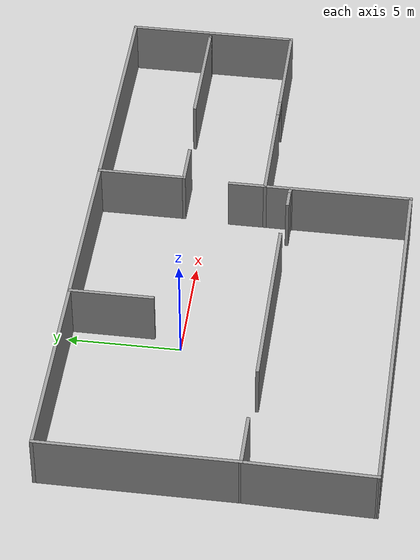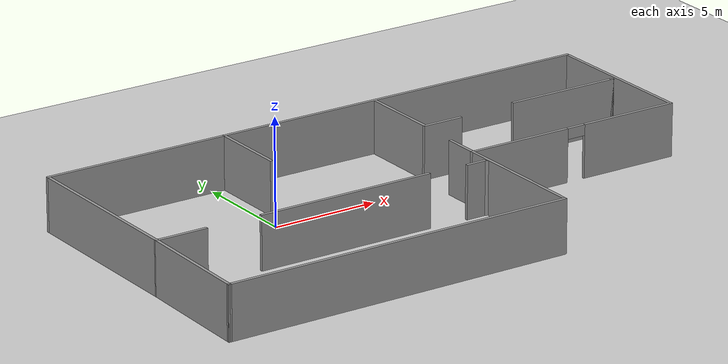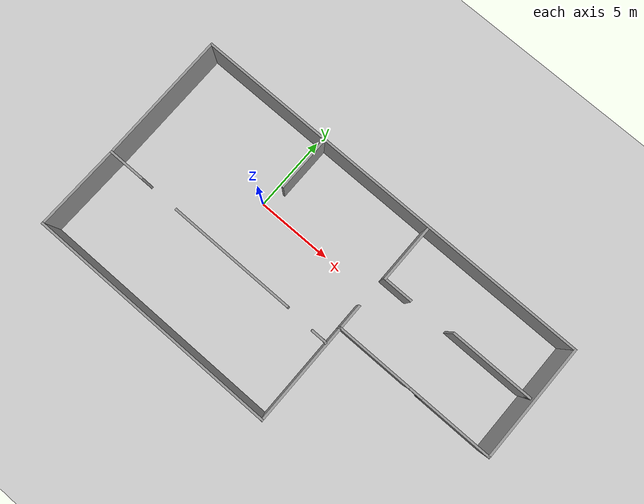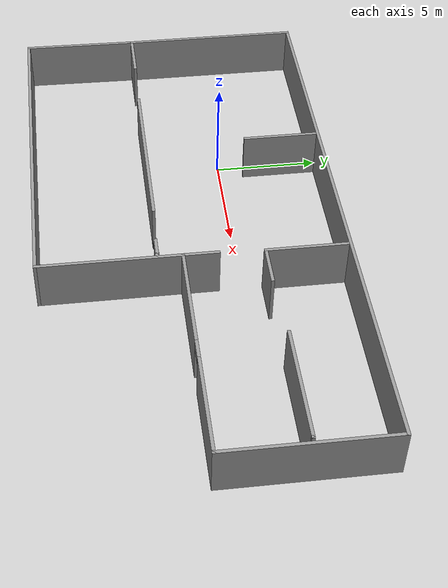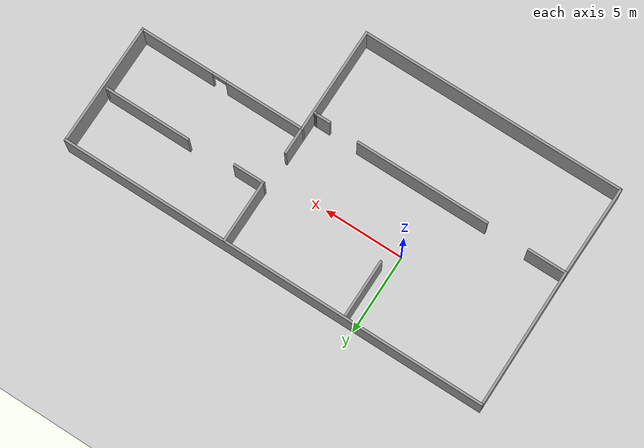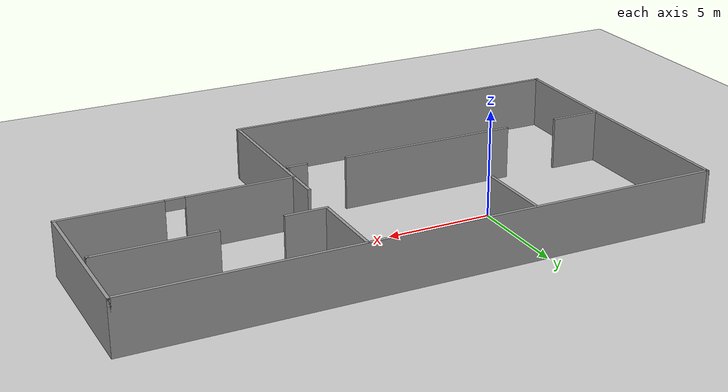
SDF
<sdf version="1.7">
 <world name="default">
  <model name="ground_plane">
   <static>1</static>
   <link name="link">
    <collision name="collision">
     <geometry><plane><normal>0 0 1</normal><size>100 100</size></plane></geometry>
     <surface>
      <contact><collide_bitmask>65535</collide_bitmask></contact>
      <friction><ode><mu>100</mu><mu2>50</mu2></ode></friction>
     </surface>
    </collision>
    <visual name="visual">
     <cast_shadows>0</cast_shadows>
     <geometry><plane><normal>0 0 1</normal><size>100 100</size></plane></geometry>
     <material>
      <script><uri>file://media/materials/scripts/gazebo.material</uri><name>Gazebo/Grey</name></script>
     </material>
    </visual>
   </link>
  </model>
  <model name="test_build">
   <link name="Wall_11">
    <pose>-13.4993 -1.80955 0 0 -0 1.5708</pose>
    <visual name="Wall_11_Visual">
     <pose>0 0 1.25 0 -0 0</pose>
     <geometry><box><size>8.75 0.15 2.5</size></box></geometry>
     <material>
      <script><uri>file://media/materials/scripts/gazebo.material</uri><name>Gazebo/Grey</name></script>
      <ambient>1 1 1 1</ambient>
      <shader type="pixel"/>
     </material>
     <meta><layer>0</layer></meta>
    </visual>
    <collision name="Wall_11_Collision">
     <pose>0 0 1.25 0 -0 0</pose>
     <geometry><box><size>8.75 0.15 2.5</size></box></geometry>
     <surface>
      <friction>
       <ode><mu>1</mu><mu2>1</mu2><fdir1>0 0 0</fdir1><slip1>0</slip1><slip2>0</slip2></ode>
       <torsional>
        <coefficient>1</coefficient>
        <patch_radius>0</patch_radius>
        <surface_radius>0</surface_radius>
        <use_patch_radius>1</use_patch_radius>
        <ode><slip>0</slip></ode>
       </torsional>
      </friction>
      <bounce><restitution_coefficient>0</restitution_coefficient><threshold>1e+06</threshold></bounce>
      <contact>
       <collide_without_contact>0</collide_without_contact>
       <collide_without_contact_bitmask>1</collide_without_contact_bitmask>
       <collide_bitmask>1</collide_bitmask>
       <ode>
        <soft_cfm>0</soft_cfm>
        <soft_erp>0.2</soft_erp>
        <kp>1e+13</kp>
        <kd>1</kd>
        <max_vel>0.01</max_vel>
        <min_depth>0</min_depth>
       </ode>
       <bullet>
        <split_impulse>1</split_impulse>
        <split_impulse_penetration_threshold>-0.01</split_impulse_penetration_threshold>
        <soft_cfm>0</soft_cfm>
        <soft_erp>0.2</soft_erp>
        <kp>1e+13</kp>
        <kd>1</kd>
       </bullet>
      </contact>
     </surface>
    </collision>
   </link>
   <link name="Wall_12">
    <pose>0.050664 2.49045 0 0 -0 0</pose>
    <visual name="Wall_12_Visual">
     <pose>0 0 1.25 0 -0 0</pose>
     <geometry><box><size>27.25 0.15 2.5</size></box></geometry>
     <material>
      <script><uri>file://media/materials/scripts/gazebo.material</uri><name>Gazebo/Grey</name></script>
      <ambient>1 1 1 1</ambient>
      <shader type="pixel"/>
     </material>
     <meta><layer>0</layer></meta>
    </visual>
    <collision name="Wall_12_Collision">
     <pose>0 0 1.25 0 -0 0</pose>
     <geometry><box><size>27.25 0.15 2.5</size></box></geometry>
     <surface>
      <friction>
       <ode><mu>1</mu><mu2>1</mu2><fdir1>0 0 0</fdir1><slip1>0</slip1><slip2>0</slip2></ode>
       <torsional>
        <coefficient>1</coefficient>
        <patch_radius>0</patch_radius>
        <surface_radius>0</surface_radius>
        <use_patch_radius>1</use_patch_radius>
        <ode><slip>0</slip></ode>
       </torsional>
      </friction>
      <bounce><restitution_coefficient>0</restitution_coefficient><threshold>1e+06</threshold></bounce>
      <contact>
       <collide_without_contact>0</collide_without_contact>
       <collide_without_contact_bitmask>1</collide_without_contact_bitmask>
       <collide_bitmask>1</collide_bitmask>
       <ode>
        <soft_cfm>0</soft_cfm>
        <soft_erp>0.2</soft_erp>
        <kp>1e+13</kp>
        <kd>1</kd>
        <max_vel>0.01</max_vel>
        <min_depth>0</min_depth>
       </ode>
       <bullet>
        <split_impulse>1</split_impulse>
        <split_impulse_penetration_threshold>-0.01</split_impulse_penetration_threshold>
        <soft_cfm>0</soft_cfm>
        <soft_erp>0.2</soft_erp>
        <kp>1e+13</kp>
        <kd>1</kd>
       </bullet>
      </contact>
     </surface>
    </collision>
   </link>
   <link name="Wall_13">
    <pose>13.6007 -1.30955 0 0 0 -1.5708</pose>
    <visual name="Wall_13_Visual">
     <pose>0 0 1.25 0 -0 0</pose>
     <geometry><box><size>7.75 0.15 2.5</size></box></geometry>
     <material>
      <script><uri>file://media/materials/scripts/gazebo.material</uri><name>Gazebo/Grey</name></script>
      <ambient>1 1 1 1</ambient>
      <shader type="pixel"/>
     </material>
     <meta><layer>0</layer></meta>
    </visual>
    <collision name="Wall_13_Collision">
     <pose>0 0 1.25 0 -0 0</pose>
     <geometry><box><size>7.75 0.15 2.5</size></box></geometry>
     <surface>
      <friction>
       <ode><mu>1</mu><mu2>1</mu2><fdir1>0 0 0</fdir1><slip1>0</slip1><slip2>0</slip2></ode>
       <torsional>
        <coefficient>1</coefficient>
        <patch_radius>0</patch_radius>
        <surface_radius>0</surface_radius>
        <use_patch_radius>1</use_patch_radius>
        <ode><slip>0</slip></ode>
       </torsional>
      </friction>
      <bounce><restitution_coefficient>0</restitution_coefficient><threshold>1e+06</threshold></bounce>
      <contact>
       <collide_without_contact>0</collide_without_contact>
       <collide_without_contact_bitmask>1</collide_without_contact_bitmask>
       <collide_bitmask>1</collide_bitmask>
       <ode>
        <soft_cfm>0</soft_cfm>
        <soft_erp>0.2</soft_erp>
        <kp>1e+13</kp>
        <kd>1</kd>
        <max_vel>0.01</max_vel>
        <min_depth>0</min_depth>
       </ode>
       <bullet>
        <split_impulse>1</split_impulse>
        <split_impulse_penetration_threshold>-0.01</split_impulse_penetration_threshold>
        <soft_cfm>0</soft_cfm>
        <soft_erp>0.2</soft_erp>
        <kp>1e+13</kp>
        <kd>1</kd>
       </bullet>
      </contact>
     </surface>
    </collision>
   </link>
   <link name="Wall_14">
    <pose>8.30066 -5.10955 0 0 -0 3.14159</pose>
    <visual name="Wall_14_Visual_0">
     <pose>-2.98431 0 1.25 0 -0 0</pose>
     <geometry><box><size>4.78138 0.15 2.5</size></box></geometry>
     <material>
      <script><uri>file://media/materials/scripts/gazebo.material</uri><name>Gazebo/Grey</name></script>
      <ambient>1 1 1 1</ambient>
      <shader type="pixel"/>
     </material>
     <meta><layer>0</layer></meta>
    </visual>
    <visual name="Wall_14_Visual_1">
     <pose>2.84069 0 1.25 0 -0 0</pose>
     <geometry><box><size>5.06862 0.15 2.5</size></box></geometry>
     <material>
      <script><uri>file://media/materials/scripts/gazebo.material</uri><name>Gazebo/Grey</name></script>
      <ambient>1 1 1 1</ambient>
      <shader type="pixel"/>
     </material>
     <meta><layer>0</layer></meta>
    </visual>
    <visual name="Wall_14_Visual_2">
     <pose>-0.143621 0 2.25 0 -0 0</pose>
     <geometry><box><size>0.9 0.15 0.5</size></box></geometry>
     <material>
      <script><uri>file://media/materials/scripts/gazebo.material</uri><name>Gazebo/Grey</name></script>
      <ambient>1 1 1 1</ambient>
      <shader type="pixel"/>
     </material>
     <meta><layer>0</layer></meta>
    </visual>
    <collision name="Wall_14_Collision_0">
     <pose>-2.98431 0 1.25 0 -0 0</pose>
     <geometry><box><size>4.78138 0.15 2.5</size></box></geometry>
     <surface>
      <friction>
       <ode><mu>1</mu><mu2>1</mu2><fdir1>0 0 0</fdir1><slip1>0</slip1><slip2>0</slip2></ode>
       <torsional>
        <coefficient>1</coefficient>
        <patch_radius>0</patch_radius>
        <surface_radius>0</surface_radius>
        <use_patch_radius>1</use_patch_radius>
        <ode><slip>0</slip></ode>
       </torsional>
      </friction>
      <bounce><restitution_coefficient>0</restitution_coefficient><threshold>1e+06</threshold></bounce>
      <contact>
       <collide_without_contact>0</collide_without_contact>
       <collide_without_contact_bitmask>1</collide_without_contact_bitmask>
       <collide_bitmask>1</collide_bitmask>
       <ode>
        <soft_cfm>0</soft_cfm>
        <soft_erp>0.2</soft_erp>
        <kp>1e+13</kp>
        <kd>1</kd>
        <max_vel>0.01</max_vel>
        <min_depth>0</min_depth>
       </ode>
       <bullet>
        <split_impulse>1</split_impulse>
        <split_impulse_penetration_threshold>-0.01</split_impulse_penetration_threshold>
        <soft_cfm>0</soft_cfm>
        <soft_erp>0.2</soft_erp>
        <kp>1e+13</kp>
        <kd>1</kd>
       </bullet>
      </contact>
     </surface>
    </collision>
    <collision name="Wall_14_Collision_1">
     <pose>2.84069 0 1.25 0 -0 0</pose>
     <geometry><box><size>5.06862 0.15 2.5</size></box></geometry>
     <surface>
      <friction>
       <ode><mu>1</mu><mu2>1</mu2><fdir1>0 0 0</fdir1><slip1>0</slip1><slip2>0</slip2></ode>
       <torsional>
        <coefficient>1</coefficient>
        <patch_radius>0</patch_radius>
        <surface_radius>0</surface_radius>
        <use_patch_radius>1</use_patch_radius>
        <ode><slip>0</slip></ode>
       </torsional>
      </friction>
      <bounce><restitution_coefficient>0</restitution_coefficient><threshold>1e+06</threshold></bounce>
      <contact>
       <collide_without_contact>0</collide_without_contact>
       <collide_without_contact_bitmask>1</collide_without_contact_bitmask>
       <collide_bitmask>1</collide_bitmask>
       <ode>
        <soft_cfm>0</soft_cfm>
        <soft_erp>0.2</soft_erp>
        <kp>1e+13</kp>
        <kd>1</kd>
        <max_vel>0.01</max_vel>
        <min_depth>0</min_depth>
       </ode>
       <bullet>
        <split_impulse>1</split_impulse>
        <split_impulse_penetration_threshold>-0.01</split_impulse_penetration_threshold>
        <soft_cfm>0</soft_cfm>
        <soft_erp>0.2</soft_erp>
        <kp>1e+13</kp>
        <kd>1</kd>
       </bullet>
      </contact>
     </surface>
    </collision>
    <collision name="Wall_14_Collision_2">
     <pose>-0.143621 0 2.25 0 -0 0</pose>
     <geometry><box><size>0.9 0.15 0.5</size></box></geometry>
     <surface>
      <friction>
       <ode><mu>1</mu><mu2>1</mu2><fdir1>0 0 0</fdir1><slip1>0</slip1><slip2>0</slip2></ode>
       <torsional>
        <coefficient>1</coefficient>
        <patch_radius>0</patch_radius>
        <surface_radius>0</surface_radius>
        <use_patch_radius>1</use_patch_radius>
        <ode><slip>0</slip></ode>
       </torsional>
      </friction>
      <bounce><restitution_coefficient>0</restitution_coefficient><threshold>1e+06</threshold></bounce>
      <contact>
       <collide_without_contact>0</collide_without_contact>
       <collide_without_contact_bitmask>1</collide_without_contact_bitmask>
       <collide_bitmask>1</collide_bitmask>
       <ode>
        <soft_cfm>0</soft_cfm>
        <soft_erp>0.2</soft_erp>
        <kp>1e+13</kp>
        <kd>1</kd>
        <max_vel>0.01</max_vel>
        <min_depth>0</min_depth>
       </ode>
       <bullet>
        <split_impulse>1</split_impulse>
        <split_impulse_penetration_threshold>-0.01</split_impulse_penetration_threshold>
        <soft_cfm>0</soft_cfm>
        <soft_erp>0.2</soft_erp>
        <kp>1e+13</kp>
        <kd>1</kd>
       </bullet>
      </contact>
     </surface>
    </collision>
   </link>
   <link name="Wall_15">
    <pose>3.00066 -8.40955 0 0 0 -1.5708</pose>
    <visual name="Wall_15_Visual">
     <pose>0 0 1.25 0 -0 0</pose>
     <geometry><box><size>6.75 0.15 2.5</size></box></geometry>
     <material>
      <script><uri>file://media/materials/scripts/gazebo.material</uri><name>Gazebo/Grey</name></script>
      <ambient>1 1 1 1</ambient>
      <shader type="pixel"/>
     </material>
     <meta><layer>0</layer></meta>
    </visual>
    <collision name="Wall_15_Collision">
     <pose>0 0 1.25 0 -0 0</pose>
     <geometry><box><size>6.75 0.15 2.5</size></box></geometry>
     <surface>
      <friction>
       <ode><mu>1</mu><mu2>1</mu2><fdir1>0 0 0</fdir1><slip1>0</slip1><slip2>0</slip2></ode>
       <torsional>
        <coefficient>1</coefficient>
        <patch_radius>0</patch_radius>
        <surface_radius>0</surface_radius>
        <use_patch_radius>1</use_patch_radius>
        <ode><slip>0</slip></ode>
       </torsional>
      </friction>
      <bounce><restitution_coefficient>0</restitution_coefficient><threshold>1e+06</threshold></bounce>
      <contact>
       <collide_without_contact>0</collide_without_contact>
       <collide_without_contact_bitmask>1</collide_without_contact_bitmask>
       <collide_bitmask>1</collide_bitmask>
       <ode>
        <soft_cfm>0</soft_cfm>
        <soft_erp>0.2</soft_erp>
        <kp>1e+13</kp>
        <kd>1</kd>
        <max_vel>0.01</max_vel>
        <min_depth>0</min_depth>
       </ode>
       <bullet>
        <split_impulse>1</split_impulse>
        <split_impulse_penetration_threshold>-0.01</split_impulse_penetration_threshold>
        <soft_cfm>0</soft_cfm>
        <soft_erp>0.2</soft_erp>
        <kp>1e+13</kp>
        <kd>1</kd>
       </bullet>
      </contact>
     </surface>
    </collision>
   </link>
   <link name="Wall_16">
    <pose>-5.29934 -11.7096 0 0 -0 3.14159</pose>
    <visual name="Wall_16_Visual">
     <pose>0 0 1.25 0 -0 0</pose>
     <geometry><box><size>16.75 0.15 2.5</size></box></geometry>
     <material>
      <script><uri>file://media/materials/scripts/gazebo.material</uri><name>Gazebo/Grey</name></script>
      <ambient>1 1 1 1</ambient>
      <shader type="pixel"/>
     </material>
     <meta><layer>0</layer></meta>
    </visual>
    <collision name="Wall_16_Collision">
     <pose>0 0 1.25 0 -0 0</pose>
     <geometry><box><size>16.75 0.15 2.5</size></box></geometry>
     <surface>
      <friction>
       <ode><mu>1</mu><mu2>1</mu2><fdir1>0 0 0</fdir1><slip1>0</slip1><slip2>0</slip2></ode>
       <torsional>
        <coefficient>1</coefficient>
        <patch_radius>0</patch_radius>
        <surface_radius>0</surface_radius>
        <use_patch_radius>1</use_patch_radius>
        <ode><slip>0</slip></ode>
       </torsional>
      </friction>
      <bounce><restitution_coefficient>0</restitution_coefficient><threshold>1e+06</threshold></bounce>
      <contact>
       <collide_without_contact>0</collide_without_contact>
       <collide_without_contact_bitmask>1</collide_without_contact_bitmask>
       <collide_bitmask>1</collide_bitmask>
       <ode>
        <soft_cfm>0</soft_cfm>
        <soft_erp>0.2</soft_erp>
        <kp>1e+13</kp>
        <kd>1</kd>
        <max_vel>0.01</max_vel>
        <min_depth>0</min_depth>
       </ode>
       <bullet>
        <split_impulse>1</split_impulse>
        <split_impulse_penetration_threshold>-0.01</split_impulse_penetration_threshold>
        <soft_cfm>0</soft_cfm>
        <soft_erp>0.2</soft_erp>
        <kp>1e+13</kp>
        <kd>1</kd>
       </bullet>
      </contact>
     </surface>
    </collision>
   </link>
   <link name="Wall_17">
    <pose>-13.5493 -8.90955 0 0 -0 1.55294</pose>
    <visual name="Wall_17_Visual">
     <pose>0 0 1.25 0 -0 0</pose>
     <geometry><box><size>5.75089 0.15 2.5</size></box></geometry>
     <material>
      <script><uri>file://media/materials/scripts/gazebo.material</uri><name>Gazebo/Grey</name></script>
      <ambient>1 1 1 1</ambient>
      <shader type="pixel"/>
     </material>
     <meta><layer>0</layer></meta>
    </visual>
    <collision name="Wall_17_Collision">
     <pose>0 0 1.25 0 -0 0</pose>
     <geometry><box><size>5.75089 0.15 2.5</size></box></geometry>
     <surface>
      <friction>
       <ode><mu>1</mu><mu2>1</mu2><fdir1>0 0 0</fdir1><slip1>0</slip1><slip2>0</slip2></ode>
       <torsional>
        <coefficient>1</coefficient>
        <patch_radius>0</patch_radius>
        <surface_radius>0</surface_radius>
        <use_patch_radius>1</use_patch_radius>
        <ode><slip>0</slip></ode>
       </torsional>
      </friction>
      <bounce><restitution_coefficient>0</restitution_coefficient><threshold>1e+06</threshold></bounce>
      <contact>
       <collide_without_contact>0</collide_without_contact>
       <collide_without_contact_bitmask>1</collide_without_contact_bitmask>
       <collide_bitmask>1</collide_bitmask>
       <ode>
        <soft_cfm>0</soft_cfm>
        <soft_erp>0.2</soft_erp>
        <kp>1e+13</kp>
        <kd>1</kd>
        <max_vel>0.01</max_vel>
        <min_depth>0</min_depth>
       </ode>
       <bullet>
        <split_impulse>1</split_impulse>
        <split_impulse_penetration_threshold>-0.01</split_impulse_penetration_threshold>
        <soft_cfm>0</soft_cfm>
        <soft_erp>0.2</soft_erp>
        <kp>1e+13</kp>
        <kd>1</kd>
       </bullet>
      </contact>
     </surface>
    </collision>
   </link>
   <link name="Wall_18">
    <pose>-12.3243 -6.10955 0 0 -0 0</pose>
    <visual name="Wall_18_Visual">
     <pose>0 0 1.25 0 -0 0</pose>
     <geometry><box><size>2.5 0.15 2.5</size></box></geometry>
     <material>
      <script><uri>file://media/materials/scripts/gazebo.material</uri><name>Gazebo/Grey</name></script>
      <ambient>1 1 1 1</ambient>
      <shader type="pixel"/>
     </material>
     <meta><layer>0</layer></meta>
    </visual>
    <collision name="Wall_18_Collision">
     <pose>0 0 1.25 0 -0 0</pose>
     <geometry><box><size>2.5 0.15 2.5</size></box></geometry>
     <surface>
      <friction>
       <ode><mu>1</mu><mu2>1</mu2><fdir1>0 0 0</fdir1><slip1>0</slip1><slip2>0</slip2></ode>
       <torsional>
        <coefficient>1</coefficient>
        <patch_radius>0</patch_radius>
        <surface_radius>0</surface_radius>
        <use_patch_radius>1</use_patch_radius>
        <ode><slip>0</slip></ode>
       </torsional>
      </friction>
      <bounce><restitution_coefficient>0</restitution_coefficient><threshold>1e+06</threshold></bounce>
      <contact>
       <collide_without_contact>0</collide_without_contact>
       <collide_without_contact_bitmask>1</collide_without_contact_bitmask>
       <collide_bitmask>1</collide_bitmask>
       <ode>
        <soft_cfm>0</soft_cfm>
        <soft_erp>0.2</soft_erp>
        <kp>1e+13</kp>
        <kd>1</kd>
        <max_vel>0.01</max_vel>
        <min_depth>0</min_depth>
       </ode>
       <bullet>
        <split_impulse>1</split_impulse>
        <split_impulse_penetration_threshold>-0.01</split_impulse_penetration_threshold>
        <soft_cfm>0</soft_cfm>
        <soft_erp>0.2</soft_erp>
        <kp>1e+13</kp>
        <kd>1</kd>
       </bullet>
      </contact>
     </surface>
    </collision>
   </link>
   <link name="Wall_20">
    <pose>-4.22443 -6.15634 0 0 -0 0</pose>
    <visual name="Wall_20_Visual">
     <pose>0 0 1.25 0 -0 0</pose>
     <geometry><box><size>8.5 0.15 2.5</size></box></geometry>
     <material>
      <script><uri>file://media/materials/scripts/gazebo.material</uri><name>Gazebo/Grey</name></script>
      <ambient>1 1 1 1</ambient>
      <shader type="pixel"/>
     </material>
     <meta><layer>0</layer></meta>
    </visual>
    <collision name="Wall_20_Collision">
     <pose>0 0 1.25 0 -0 0</pose>
     <geometry><box><size>8.5 0.15 2.5</size></box></geometry>
     <surface>
      <friction>
       <ode><mu>1</mu><mu2>1</mu2><fdir1>0 0 0</fdir1><slip1>0</slip1><slip2>0</slip2></ode>
       <torsional>
        <coefficient>1</coefficient>
        <patch_radius>0</patch_radius>
        <surface_radius>0</surface_radius>
        <use_patch_radius>1</use_patch_radius>
        <ode><slip>0</slip></ode>
       </torsional>
      </friction>
      <bounce><restitution_coefficient>0</restitution_coefficient><threshold>1e+06</threshold></bounce>
      <contact>
       <collide_without_contact>0</collide_without_contact>
       <collide_without_contact_bitmask>1</collide_without_contact_bitmask>
       <collide_bitmask>1</collide_bitmask>
       <ode>
        <soft_cfm>0</soft_cfm>
        <soft_erp>0.2</soft_erp>
        <kp>1e+13</kp>
        <kd>1</kd>
        <max_vel>0.01</max_vel>
        <min_depth>0</min_depth>
       </ode>
       <bullet>
        <split_impulse>1</split_impulse>
        <split_impulse_penetration_threshold>-0.01</split_impulse_penetration_threshold>
        <soft_cfm>0</soft_cfm>
        <soft_erp>0.2</soft_erp>
        <kp>1e+13</kp>
        <kd>1</kd>
       </bullet>
      </contact>
     </surface>
    </collision>
   </link>
   <link name="Wall_22">
    <pose>2.36574 -6.24992 0 0 -0 0</pose>
    <visual name="Wall_22_Visual">
     <pose>0 0 1.25 0 -0 0</pose>
     <geometry><box><size>1 0.15 2.5</size></box></geometry>
     <material>
      <script><uri>file://media/materials/scripts/gazebo.material</uri><name>Gazebo/Grey</name></script>
      <ambient>1 1 1 1</ambient>
      <shader type="pixel"/>
     </material>
     <meta><layer>0</layer></meta>
    </visual>
    <collision name="Wall_22_Collision">
     <pose>0 0 1.25 0 -0 0</pose>
     <geometry><box><size>1 0.15 2.5</size></box></geometry>
     <surface>
      <friction>
       <ode><mu>1</mu><mu2>1</mu2><fdir1>0 0 0</fdir1><slip1>0</slip1><slip2>0</slip2></ode>
       <torsional>
        <coefficient>1</coefficient>
        <patch_radius>0</patch_radius>
        <surface_radius>0</surface_radius>
        <use_patch_radius>1</use_patch_radius>
        <ode><slip>0</slip></ode>
       </torsional>
      </friction>
      <bounce><restitution_coefficient>0</restitution_coefficient><threshold>1e+06</threshold></bounce>
      <contact>
       <collide_without_contact>0</collide_without_contact>
       <collide_without_contact_bitmask>1</collide_without_contact_bitmask>
       <collide_bitmask>1</collide_bitmask>
       <ode>
        <soft_cfm>0</soft_cfm>
        <soft_erp>0.2</soft_erp>
        <kp>1e+13</kp>
        <kd>1</kd>
        <max_vel>0.01</max_vel>
        <min_depth>0</min_depth>
       </ode>
       <bullet>
        <split_impulse>1</split_impulse>
        <split_impulse_penetration_threshold>-0.01</split_impulse_penetration_threshold>
        <soft_cfm>0</soft_cfm>
        <soft_erp>0.2</soft_erp>
        <kp>1e+13</kp>
        <kd>1</kd>
       </bullet>
      </contact>
     </surface>
    </collision>
   </link>
   <link name="Wall_23">
    <pose>2.83903 -6.26286 0 0 0 -0.261799</pose>
    <visual name="Wall_23_Visual">
     <pose>0 0 1.25 0 -0 0</pose>
     <geometry><box><size>0.25 0.15 2.5</size></box></geometry>
     <material>
      <script><uri>file://media/materials/scripts/gazebo.material</uri><name>Gazebo/Grey</name></script>
      <ambient>1 1 1 1</ambient>
      <shader type="pixel"/>
     </material>
     <meta><layer>0</layer></meta>
    </visual>
    <collision name="Wall_23_Collision">
     <pose>0 0 1.25 0 -0 0</pose>
     <geometry><box><size>0.25 0.15 2.5</size></box></geometry>
     <surface>
      <friction>
       <ode><mu>1</mu><mu2>1</mu2><fdir1>0 0 0</fdir1><slip1>0</slip1><slip2>0</slip2></ode>
       <torsional>
        <coefficient>1</coefficient>
        <patch_radius>0</patch_radius>
        <surface_radius>0</surface_radius>
        <use_patch_radius>1</use_patch_radius>
        <ode><slip>0</slip></ode>
       </torsional>
      </friction>
      <bounce><restitution_coefficient>0</restitution_coefficient><threshold>1e+06</threshold></bounce>
      <contact>
       <collide_without_contact>0</collide_without_contact>
       <collide_without_contact_bitmask>1</collide_without_contact_bitmask>
       <collide_bitmask>1</collide_bitmask>
       <ode>
        <soft_cfm>0</soft_cfm>
        <soft_erp>0.2</soft_erp>
        <kp>1e+13</kp>
        <kd>1</kd>
        <max_vel>0.01</max_vel>
        <min_depth>0</min_depth>
       </ode>
       <bullet>
        <split_impulse>1</split_impulse>
        <split_impulse_penetration_threshold>-0.01</split_impulse_penetration_threshold>
        <soft_cfm>0</soft_cfm>
        <soft_erp>0.2</soft_erp>
        <kp>1e+13</kp>
        <kd>1</kd>
       </bullet>
      </contact>
     </surface>
    </collision>
   </link>
   <link name="Wall_25">
    <pose>-4.70317 0.65267 0 0 0 -1.5708</pose>
    <visual name="Wall_25_Visual">
     <pose>0 0 1.25 0 -0 0</pose>
     <geometry><box><size>3.75 0.15 2.5</size></box></geometry>
     <material>
      <script><uri>file://media/materials/scripts/gazebo.material</uri><name>Gazebo/Grey</name></script>
      <ambient>1 1 1 1</ambient>
      <shader type="pixel"/>
     </material>
     <meta><layer>0</layer></meta>
    </visual>
    <collision name="Wall_25_Collision">
     <pose>0 0 1.25 0 -0 0</pose>
     <geometry><box><size>3.75 0.15 2.5</size></box></geometry>
     <surface>
      <friction>
       <ode><mu>1</mu><mu2>1</mu2><fdir1>0 0 0</fdir1><slip1>0</slip1><slip2>0</slip2></ode>
       <torsional>
        <coefficient>1</coefficient>
        <patch_radius>0</patch_radius>
        <surface_radius>0</surface_radius>
        <use_patch_radius>1</use_patch_radius>
        <ode><slip>0</slip></ode>
       </torsional>
      </friction>
      <bounce><restitution_coefficient>0</restitution_coefficient><threshold>1e+06</threshold></bounce>
      <contact>
       <collide_without_contact>0</collide_without_contact>
       <collide_without_contact_bitmask>1</collide_without_contact_bitmask>
       <collide_bitmask>1</collide_bitmask>
       <ode>
        <soft_cfm>0</soft_cfm>
        <soft_erp>0.2</soft_erp>
        <kp>1e+13</kp>
        <kd>1</kd>
        <max_vel>0.01</max_vel>
        <min_depth>0</min_depth>
       </ode>
       <bullet>
        <split_impulse>1</split_impulse>
        <split_impulse_penetration_threshold>-0.01</split_impulse_penetration_threshold>
        <soft_cfm>0</soft_cfm>
        <soft_erp>0.2</soft_erp>
        <kp>1e+13</kp>
        <kd>1</kd>
       </bullet>
      </contact>
     </surface>
    </collision>
   </link>
   <link name="Wall_29">
    <pose>3.00066 -4.30955 0 0 -0 1.5708</pose>
    <visual name="Wall_29_Visual">
     <pose>0 0 1.25 0 -0 0</pose>
     <geometry><box><size>1.75 0.15 2.5</size></box></geometry>
     <material>
      <script><uri>file://media/materials/scripts/gazebo.material</uri><name>Gazebo/Grey</name></script>
      <ambient>1 1 1 1</ambient>
      <shader type="pixel"/>
     </material>
     <meta><layer>0</layer></meta>
    </visual>
    <collision name="Wall_29_Collision">
     <pose>0 0 1.25 0 -0 0</pose>
     <geometry><box><size>1.75 0.15 2.5</size></box></geometry>
     <surface>
      <friction>
       <ode><mu>1</mu><mu2>1</mu2><fdir1>0 0 0</fdir1><slip1>0</slip1><slip2>0</slip2></ode>
       <torsional>
        <coefficient>1</coefficient>
        <patch_radius>0</patch_radius>
        <surface_radius>0</surface_radius>
        <use_patch_radius>1</use_patch_radius>
        <ode><slip>0</slip></ode>
       </torsional>
      </friction>
      <bounce><restitution_coefficient>0</restitution_coefficient><threshold>1e+06</threshold></bounce>
      <contact>
       <collide_without_contact>0</collide_without_contact>
       <collide_without_contact_bitmask>1</collide_without_contact_bitmask>
       <collide_bitmask>1</collide_bitmask>
       <ode>
        <soft_cfm>0</soft_cfm>
        <soft_erp>0.2</soft_erp>
        <kp>1e+13</kp>
        <kd>1</kd>
        <max_vel>0.01</max_vel>
        <min_depth>0</min_depth>
       </ode>
       <bullet>
        <split_impulse>1</split_impulse>
        <split_impulse_penetration_threshold>-0.01</split_impulse_penetration_threshold>
        <soft_cfm>0</soft_cfm>
        <soft_erp>0.2</soft_erp>
        <kp>1e+13</kp>
        <kd>1</kd>
       </bullet>
      </contact>
     </surface>
    </collision>
   </link>
   <link name="Wall_31">
    <pose>3.11044 0.541045 0 0 -0 1.5708</pose>
    <visual name="Wall_31_Visual">
     <pose>0 0 1.25 0 -0 0</pose>
     <geometry><box><size>4 0.15 2.5</size></box></geometry>
     <material>
      <script><uri>file://media/materials/scripts/gazebo.material</uri><name>Gazebo/Grey</name></script>
      <ambient>1 1 1 1</ambient>
      <shader type="pixel"/>
     </material>
     <meta><layer>0</layer></meta>
    </visual>
    <collision name="Wall_31_Collision">
     <pose>0 0 1.25 0 -0 0</pose>
     <geometry><box><size>4 0.15 2.5</size></box></geometry>
     <surface>
      <friction>
       <ode><mu>1</mu><mu2>1</mu2><fdir1>0 0 0</fdir1><slip1>0</slip1><slip2>0</slip2></ode>
       <torsional>
        <coefficient>1</coefficient>
        <patch_radius>0</patch_radius>
        <surface_radius>0</surface_radius>
        <use_patch_radius>1</use_patch_radius>
        <ode><slip>0</slip></ode>
       </torsional>
      </friction>
      <bounce><restitution_coefficient>0</restitution_coefficient><threshold>1e+06</threshold></bounce>
      <contact>
       <collide_without_contact>0</collide_without_contact>
       <collide_without_contact_bitmask>1</collide_without_contact_bitmask>
       <collide_bitmask>1</collide_bitmask>
       <ode>
        <soft_cfm>0</soft_cfm>
        <soft_erp>0.2</soft_erp>
        <kp>1e+13</kp>
        <kd>1</kd>
        <max_vel>0.01</max_vel>
        <min_depth>0</min_depth>
       </ode>
       <bullet>
        <split_impulse>1</split_impulse>
        <split_impulse_penetration_threshold>-0.01</split_impulse_penetration_threshold>
        <soft_cfm>0</soft_cfm>
        <soft_erp>0.2</soft_erp>
        <kp>1e+13</kp>
        <kd>1</kd>
       </bullet>
      </contact>
     </surface>
    </collision>
   </link>
   <link name="Wall_33">
    <pose>4.03544 -1.38396 0 0 -0 0</pose>
    <visual name="Wall_33_Visual">
     <pose>0 0 1.25 0 -0 0</pose>
     <geometry><box><size>2 0.15 2.5</size></box></geometry>
     <material>
      <script><uri>file://media/materials/scripts/gazebo.material</uri><name>Gazebo/Grey</name></script>
      <ambient>1 1 1 1</ambient>
      <shader type="pixel"/>
     </material>
     <meta><layer>0</layer></meta>
    </visual>
    <collision name="Wall_33_Collision">
     <pose>0 0 1.25 0 -0 0</pose>
     <geometry><box><size>2 0.15 2.5</size></box></geometry>
     <surface>
      <friction>
       <ode><mu>1</mu><mu2>1</mu2><fdir1>0 0 0</fdir1><slip1>0</slip1><slip2>0</slip2></ode>
       <torsional>
        <coefficient>1</coefficient>
        <patch_radius>0</patch_radius>
        <surface_radius>0</surface_radius>
        <use_patch_radius>1</use_patch_radius>
        <ode><slip>0</slip></ode>
       </torsional>
      </friction>
      <bounce><restitution_coefficient>0</restitution_coefficient><threshold>1e+06</threshold></bounce>
      <contact>
       <collide_without_contact>0</collide_without_contact>
       <collide_without_contact_bitmask>1</collide_without_contact_bitmask>
       <collide_bitmask>1</collide_bitmask>
       <ode>
        <soft_cfm>0</soft_cfm>
        <soft_erp>0.2</soft_erp>
        <kp>1e+13</kp>
        <kd>1</kd>
        <max_vel>0.01</max_vel>
        <min_depth>0</min_depth>
       </ode>
       <bullet>
        <split_impulse>1</split_impulse>
        <split_impulse_penetration_threshold>-0.01</split_impulse_penetration_threshold>
        <soft_cfm>0</soft_cfm>
        <soft_erp>0.2</soft_erp>
        <kp>1e+13</kp>
        <kd>1</kd>
       </bullet>
      </contact>
     </surface>
    </collision>
   </link>
   <link name="Wall_35">
    <pose>10.6514 -1.1968 0 0 -0 0</pose>
    <visual name="Wall_35_Visual">
     <pose>0 0 1.25 0 -0 0</pose>
     <geometry><box><size>5.5 0.15 2.5</size></box></geometry>
     <material>
      <script><uri>file://media/materials/scripts/gazebo.material</uri><name>Gazebo/Grey</name></script>
      <ambient>1 1 1 1</ambient>
      <shader type="pixel"/>
     </material>
     <meta><layer>0</layer></meta>
    </visual>
    <collision name="Wall_35_Collision">
     <pose>0 0 1.25 0 -0 0</pose>
     <geometry><box><size>5.5 0.15 2.5</size></box></geometry>
     <surface>
      <friction>
       <ode><mu>1</mu><mu2>1</mu2><fdir1>0 0 0</fdir1><slip1>0</slip1><slip2>0</slip2></ode>
       <torsional>
        <coefficient>1</coefficient>
        <patch_radius>0</patch_radius>
        <surface_radius>0</surface_radius>
        <use_patch_radius>1</use_patch_radius>
        <ode><slip>0</slip></ode>
       </torsional>
      </friction>
      <bounce><restitution_coefficient>0</restitution_coefficient><threshold>1e+06</threshold></bounce>
      <contact>
       <collide_without_contact>0</collide_without_contact>
       <collide_without_contact_bitmask>1</collide_without_contact_bitmask>
       <collide_bitmask>1</collide_bitmask>
       <ode>
        <soft_cfm>0</soft_cfm>
        <soft_erp>0.2</soft_erp>
        <kp>1e+13</kp>
        <kd>1</kd>
        <max_vel>0.01</max_vel>
        <min_depth>0</min_depth>
       </ode>
       <bullet>
        <split_impulse>1</split_impulse>
        <split_impulse_penetration_threshold>-0.01</split_impulse_penetration_threshold>
        <soft_cfm>0</soft_cfm>
        <soft_erp>0.2</soft_erp>
        <kp>1e+13</kp>
        <kd>1</kd>
       </bullet>
      </contact>
     </surface>
    </collision>
   </link>
   <link name="Wall_36">
    <pose>13.3264 -1.1968 0 0 -0 0</pose>
    <visual name="Wall_36_Visual">
     <pose>0 0 1.25 0 -0 0</pose>
     <geometry><box><size>0.15 0.15 2.5</size></box></geometry>
     <material>
      <script><uri>file://media/materials/scripts/gazebo.material</uri><name>Gazebo/Grey</name></script>
      <ambient>1 1 1 1</ambient>
      <shader type="pixel"/>
     </material>
     <meta><layer>0</layer></meta>
    </visual>
    <collision name="Wall_36_Collision">
     <pose>0 0 1.25 0 -0 0</pose>
     <geometry><box><size>0.15 0.15 2.5</size></box></geometry>
     <surface>
      <friction>
       <ode><mu>1</mu><mu2>1</mu2><fdir1>0 0 0</fdir1><slip1>0</slip1><slip2>0</slip2></ode>
       <torsional>
        <coefficient>1</coefficient>
        <patch_radius>0</patch_radius>
        <surface_radius>0</surface_radius>
        <use_patch_radius>1</use_patch_radius>
        <ode><slip>0</slip></ode>
       </torsional>
      </friction>
      <bounce><restitution_coefficient>0</restitution_coefficient><threshold>1e+06</threshold></bounce>
      <contact>
       <collide_without_contact>0</collide_without_contact>
       <collide_without_contact_bitmask>1</collide_without_contact_bitmask>
       <collide_bitmask>1</collide_bitmask>
       <ode>
        <soft_cfm>0</soft_cfm>
        <soft_erp>0.2</soft_erp>
        <kp>1e+13</kp>
        <kd>1</kd>
        <max_vel>0.01</max_vel>
        <min_depth>0</min_depth>
       </ode>
       <bullet>
        <split_impulse>1</split_impulse>
        <split_impulse_penetration_threshold>-0.01</split_impulse_penetration_threshold>
        <soft_cfm>0</soft_cfm>
        <soft_erp>0.2</soft_erp>
        <kp>1e+13</kp>
        <kd>1</kd>
       </bullet>
      </contact>
     </surface>
    </collision>
   </link>
   <static>1</static>
   <pose>5.30612 2.42792 0 0 -0 0</pose>
  </model>
 </world>
</sdf>
